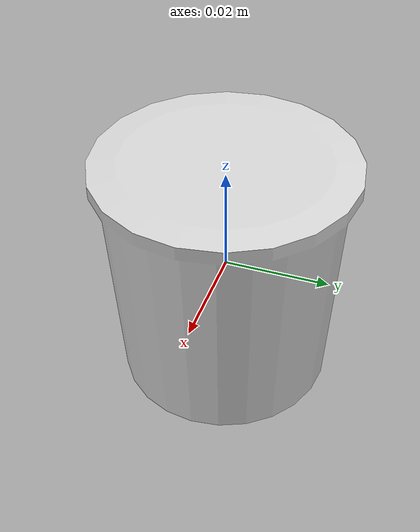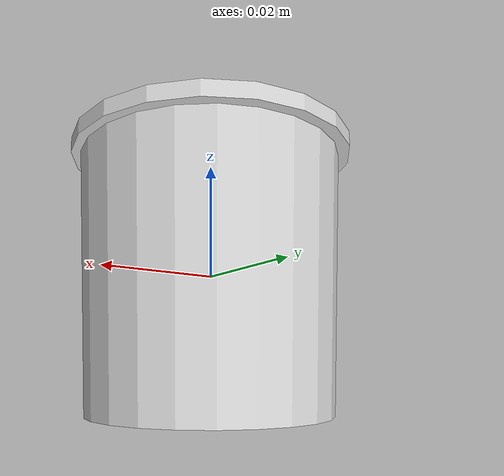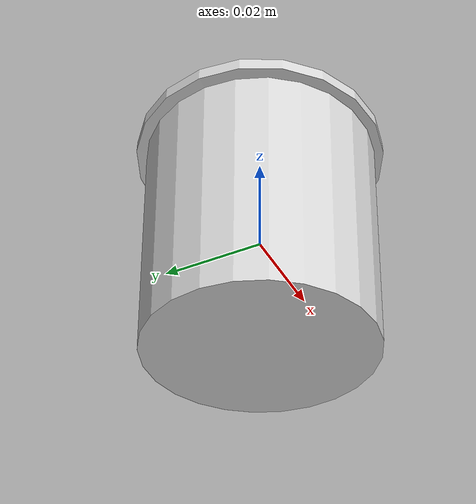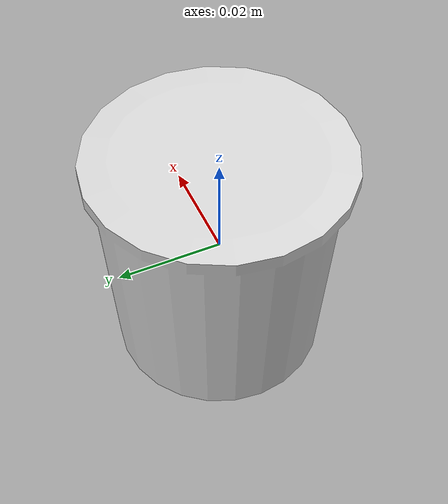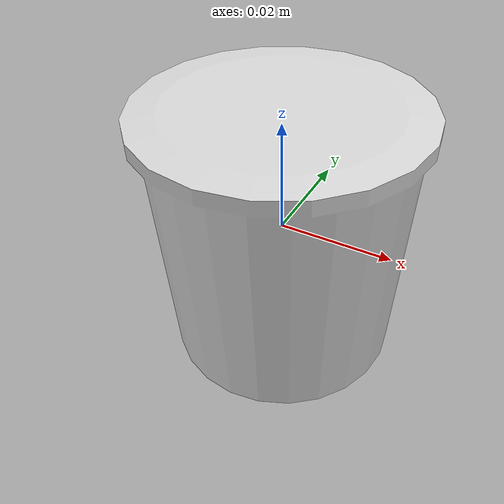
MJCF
<mujoco model="coffee_pod">
  <asset>
    <mesh file="meshes/coffee_pod.stl" name="coffee_pod_mesh" scale="0.018 0.018 0.018"/>
    <texture file="../textures/ceramic.png" name="tex-ceramic"/>
    <material name="ceramic" reflectance="0.5" texrepeat="1 1" texture="tex-ceramic" texuniform="true"/>
  </asset>
  <worldbody>
    <body>
      <body name="object">
        <!-- NOTE: had to make friction high to ensure it did not rock back and forth -->
        <geom pos="0 0 0" mesh="coffee_pod_mesh" type="mesh" solimp="0.998 0.998 0.001" solref="0.001 1" density="100" friction="1 1 1" group="0" condim="4" material="ceramic" rgba="0.839 0.839 0.839 1"/>
      </body>
      <site rgba="0 0 0 0" size="0.005" pos="0 0 -0.023103" name="bottom_site"/>
      <site rgba="0 0 0 0" size="0.005" pos="0 0 0.023103" name="top_site"/>
      <site rgba="0 0 0 0" size="0.005" pos="0.0243 0.0243 0" name="horizontal_radius_site"/>
    </body>
  </worldbody>
</mujoco>
